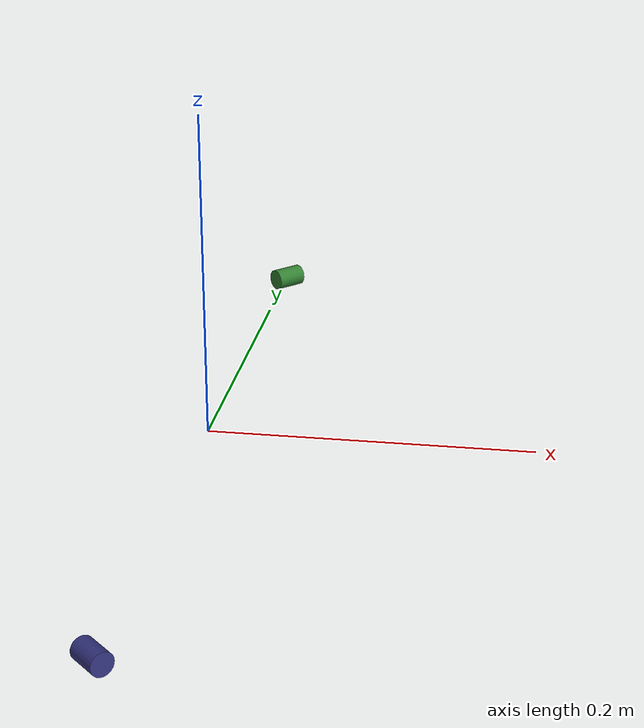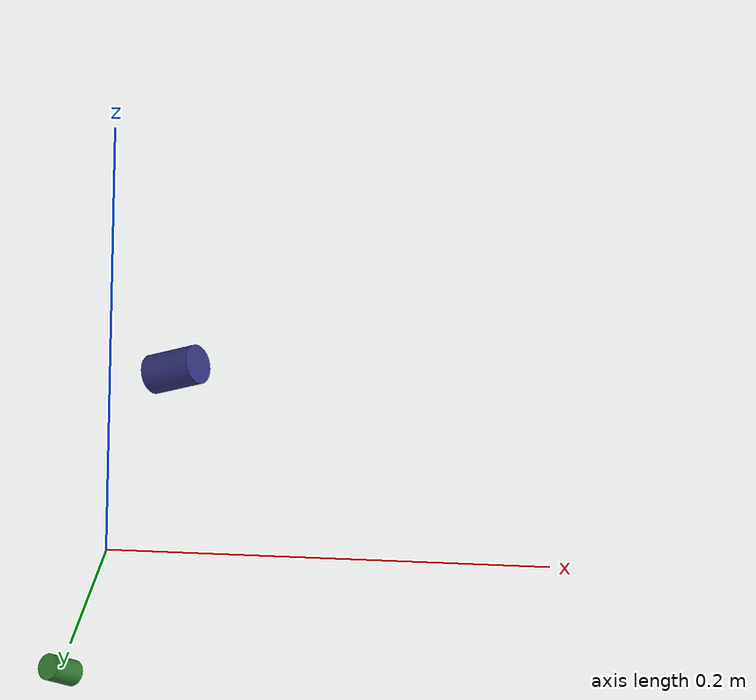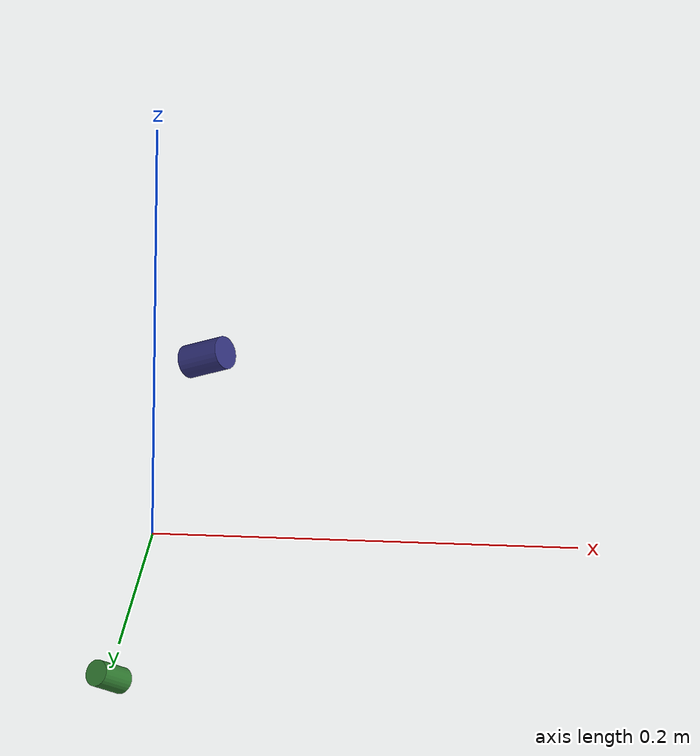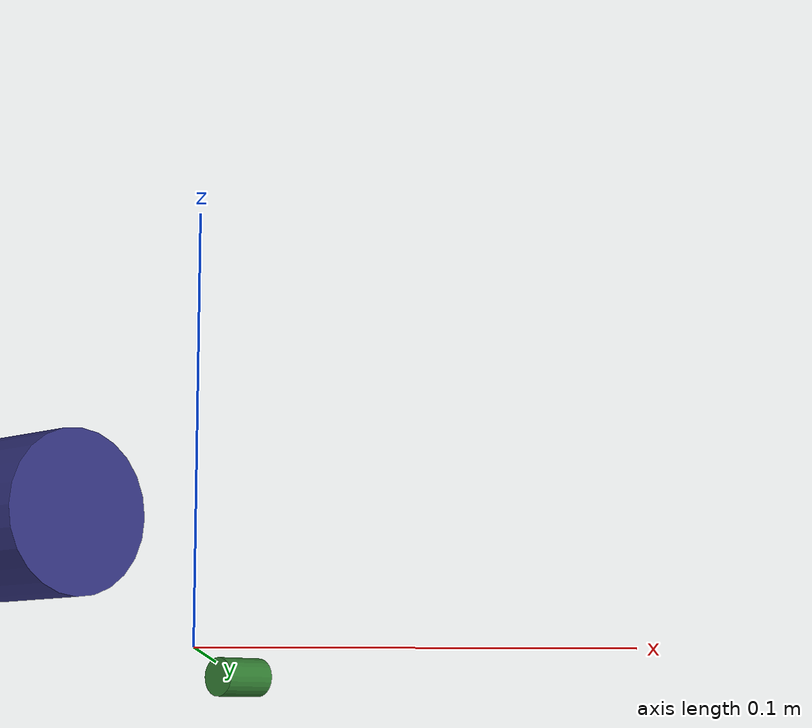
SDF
<?xml version="1.0"?>
<sdf version='1.6'>
<model name='multi_camera'>
  <allow_auto_disable>1</allow_auto_disable>
  <link name='link_multicam'>
    <gravity>1</gravity>
    <self_collide>0</self_collide>
    <enable_wind>0</enable_wind>
    <kinematic>0</kinematic>

    <inertial>
      <mass>0.020</mass>
      <inertia>
        <ixx>0.0</ixx>
        <ixy>0</ixy>
        <ixz>0</ixz>
        <iyy>0.0</iyy>
        <iyz>0</iyz>
        <izz>0.0</izz>
      </inertia>
    </inertial>

    <collision name='collision_lens_left'>
      <max_contacts>1</max_contacts>
      <pose>0 0.26500 0 0 1.5707 0.785398</pose>
      <geometry>
        <cylinder>
          <radius>0.007</radius>
          <length>0.02</length>
        </cylinder>
      </geometry>
    </collision>

    <collision name='collision_lens_right'>
      <max_contacts>1</max_contacts>
      <pose>0 -0.26500 0 0 1.5707 -0.785398</pose>
      <geometry>
        <cylinder>
          <radius>0.007</radius>
          <length>0.02</length>
        </cylinder>
      </geometry>
    </collision>

    <visual name='visual_lens_left'>
      <pose>0 0.26500 0 0 1.5707 0.785398</pose>
      <geometry>
        <cylinder>
          <radius>0.007</radius>
          <length>0.02</length>
        </cylinder>
      </geometry>
      <material>
        <lighting>1</lighting>
        <ambient>0.05 0.89 0.05 1</ambient>
        <diffuse>0.2 0.5 0.2 1</diffuse>
        <specular>0.1 0.5 0.1 1</specular>
        <emissive>0.1 0.1 0.1 1</emissive>
      </material>
      <transparency>0</transparency>
      <cast_shadows>0</cast_shadows>
    </visual>

    <visual name='visual_lens_right'>
      <pose>0 -0.26500 0 0 1.5707 -0.785398</pose>
      <geometry>
        <cylinder>
          <radius>0.007</radius>
          <length>0.02</length>
        </cylinder>
      </geometry>
      <material>
        <lighting>1</lighting>
        <ambient>0.05 0.05 0.89 1</ambient>
        <diffuse>0.2 0.2 0.5 1</diffuse>
        <specular>0.1 0.1 0.5 1</specular>
        <emissive>0.1 0.1 0.1 1</emissive>
      </material>
      <transparency>0</transparency>
      <cast_shadows>0</cast_shadows>
    </visual>

    <sensor type="multicamera" name="multicam">
      <update_rate>15</update_rate>

      <camera name="left">
        <pose>0 0.252 0 -0 -0 0.785398</pose>
        <horizontal_fov>1.18</horizontal_fov>
        <image>
          <width>704</width>
          <height>478</height>
          <format>R8G8B8</format>
        </image>
        <clip>
          <near>0.02</near>
          <far>100</far>
        </clip>
      </camera>

      <camera name="right">
        <pose>0 -0.252 0 -0 -0 -0.785398</pose>
        <horizontal_fov>1.18</horizontal_fov>
        <image>
          <width>704</width>
          <height>478</height>
          <format>R8G8B8</format>
        </image>
        <clip>
          <near>0.02</near>
          <far>100</far>
        </clip>
      </camera>

      <visualize>1</visualize>

      <plugin name="MultiCameraPlugin" filename="libMultiCameraPlugin.so">
        <ros2>
          <frame_id>left</frame_id>
          <frame_id>right</frame_id>
        </ros2>
      </plugin>
    </sensor>
  </link>
</model>
</sdf>
